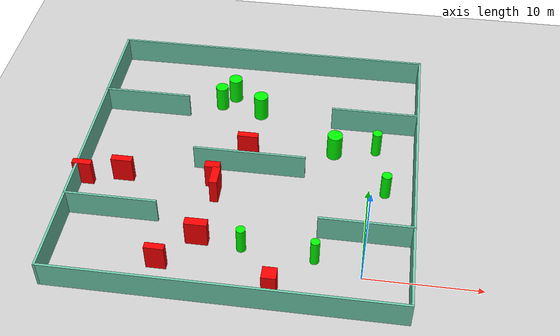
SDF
<sdf version="1.7">
 <world name="default">
  <light name="sun" type="directional">
   <pose>0 0 10 0 -0 0</pose>
   <diffuse>0.8 0.8 0.8 1</diffuse>
   <specular>0.2 0.2 0.2 1</specular>
   <attenuation>
    <range>1000</range>
    <constant>0.9</constant>
    <linear>0.01</linear>
    <quadratic>0.001</quadratic>
   </attenuation>
   <direction>-0.5 0.1 -0.9</direction>
   <spot><inner_angle>0</inner_angle><outer_angle>0</outer_angle><falloff>0</falloff></spot>
  </light>
  <model name="ground_plane">
   <static>1</static>
   <link name="link">
    <collision name="collision">
     <geometry><plane><normal>0 0 1</normal><size>100 100</size></plane></geometry>
     <surface>
      <contact><collide_bitmask>65535</collide_bitmask></contact>
      <friction><ode><mu>100</mu><mu2>50</mu2></ode></friction>
     </surface>
    </collision>
    <visual name="visual">
     <cast_shadows>0</cast_shadows>
     <geometry><plane><normal>0 0 1</normal><size>100 100</size></plane></geometry>
     <material>
      <script><uri>file://media/materials/scripts/gazebo.material</uri><name>Gazebo/Grey</name></script>
     </material>
    </visual>
   </link>
  </model>
  <gravity>0 0 -9.8</gravity>
  <magnetic_field>6e-06 2.3e-05 -4.2e-05</magnetic_field>
  <atmosphere type="adiabatic"/>
  <physics type="ode">
   <max_step_size>0.001</max_step_size>
   <real_time_factor>1</real_time_factor>
   <real_time_update_rate>1000</real_time_update_rate>
  </physics>
  <scene><ambient>0.4 0.4 0.4 1</ambient><background>0.7 0.7 0.7 1</background><shadows>1</shadows></scene>
  <spherical_coordinates>
   <surface_model>EARTH_WGS84</surface_model>
   <latitude_deg>0</latitude_deg>
   <longitude_deg>0</longitude_deg>
   <elevation>0</elevation>
   <heading_deg>0</heading_deg>
  </spherical_coordinates>
  <model name="my_base_walls">
   <link name="Wall_10">
    <collision name="Wall_10_Collision">
     <geometry><box><size>8.2 0.2 2.5</size></box></geometry>
     <pose>0 0 1.25 0 -0 0</pose>
    </collision>
    <visual name="Wall_10_Visual">
     <pose>0 0 1.25 0 -0 0</pose>
     <geometry><box><size>8.2 0.2 2.5</size></box></geometry>
     <material>
      <script><uri>file://media/materials/scripts/gazebo.material</uri><name>Gazebo/Grey</name></script>
      <ambient>0.435294 0.796078 0.67451 1</ambient>
     </material>
     <meta><layer>0</layer></meta>
    </visual>
    <pose>-11 -7 0 0 -0 0</pose>
   </link>
   <link name="Wall_12">
    <collision name="Wall_12_Collision">
     <geometry><box><size>8.2 0.2 2.5</size></box></geometry>
     <pose>0 0 1.25 0 -0 0</pose>
    </collision>
    <visual name="Wall_12_Visual">
     <pose>0 0 1.25 0 -0 0</pose>
     <geometry><box><size>8.2 0.2 2.5</size></box></geometry>
     <material>
      <script><uri>file://media/materials/scripts/gazebo.material</uri><name>Gazebo/Grey</name></script>
      <ambient>0.435294 0.796078 0.67451 1</ambient>
     </material>
     <meta><layer>0</layer></meta>
    </visual>
    <pose>-11 7 0 0 -0 0</pose>
   </link>
   <link name="Wall_14">
    <collision name="Wall_14_Collision">
     <geometry><box><size>8.2 0.2 2.5</size></box></geometry>
     <pose>0 0 1.25 0 -0 0</pose>
    </collision>
    <visual name="Wall_14_Visual">
     <pose>0 0 1.25 0 -0 0</pose>
     <geometry><box><size>8.2 0.2 2.5</size></box></geometry>
     <material>
      <script><uri>file://media/materials/scripts/gazebo.material</uri><name>Gazebo/Grey</name></script>
      <ambient>0.435294 0.796078 0.67451 1</ambient>
     </material>
     <meta><layer>0</layer></meta>
    </visual>
    <pose>11 7 0 0 -0 3.14159</pose>
   </link>
   <link name="Wall_16">
    <collision name="Wall_16_Collision">
     <geometry><box><size>10.2 0.2 2.5</size></box></geometry>
     <pose>0 0 1.25 0 -0 0</pose>
    </collision>
    <visual name="Wall_16_Visual">
     <pose>0 0 1.25 0 -0 0</pose>
     <geometry><box><size>10.2 0.2 2.5</size></box></geometry>
     <material>
      <script><uri>file://media/materials/scripts/gazebo.material</uri><name>Gazebo/Grey</name></script>
      <ambient>0.435294 0.796078 0.67451 1</ambient>
     </material>
     <meta><layer>0</layer></meta>
    </visual>
    <pose>0 0 0 0 -0 3.14159</pose>
   </link>
   <link name="Wall_2">
    <collision name="Wall_2_Collision">
     <geometry><box><size>30.2 0.2 2.5</size></box></geometry>
     <pose>0 0 1.25 0 -0 0</pose>
    </collision>
    <visual name="Wall_2_Visual">
     <pose>0 0 1.25 0 -0 0</pose>
     <geometry><box><size>30.2 0.2 2.5</size></box></geometry>
     <material>
      <script><uri>file://media/materials/scripts/gazebo.material</uri><name>Gazebo/Grey</name></script>
      <ambient>0.435294 0.796078 0.67451 1</ambient>
     </material>
     <meta><layer>0</layer></meta>
    </visual>
    <pose>0 -15 0 0 -0 3.14159</pose>
   </link>
   <link name="Wall_3">
    <collision name="Wall_3_Collision">
     <geometry><box><size>30.2 0.2 2.5</size></box></geometry>
     <pose>0 0 1.25 0 -0 0</pose>
    </collision>
    <visual name="Wall_3_Visual">
     <pose>0 0 1.25 0 -0 0</pose>
     <geometry><box><size>30.2 0.2 2.5</size></box></geometry>
     <material>
      <script><uri>file://media/materials/scripts/gazebo.material</uri><name>Gazebo/Grey</name></script>
      <ambient>0.435294 0.796078 0.67451 1</ambient>
     </material>
     <meta><layer>0</layer></meta>
    </visual>
    <pose>-15 0 0 0 -0 1.5708</pose>
   </link>
   <link name="Wall_4">
    <collision name="Wall_4_Collision">
     <geometry><box><size>30.2 0.2 2.5</size></box></geometry>
     <pose>0 0 1.25 0 -0 0</pose>
    </collision>
    <visual name="Wall_4_Visual">
     <pose>0 0 1.25 0 -0 0</pose>
     <geometry><box><size>30.2 0.2 2.5</size></box></geometry>
     <material>
      <script><uri>file://media/materials/scripts/gazebo.material</uri><name>Gazebo/Grey</name></script>
      <ambient>0.435294 0.796078 0.67451 1</ambient>
     </material>
     <meta><layer>0</layer></meta>
    </visual>
    <pose>0 15 0 0 -0 0</pose>
   </link>
   <link name="Wall_6">
    <collision name="Wall_6_Collision">
     <geometry><box><size>30.2 0.2 2.5</size></box></geometry>
     <pose>0 0 1.25 0 -0 0</pose>
    </collision>
    <visual name="Wall_6_Visual">
     <pose>0 0 1.25 0 -0 0</pose>
     <geometry><box><size>30.2 0.2 2.5</size></box></geometry>
     <material>
      <script><uri>file://media/materials/scripts/gazebo.material</uri><name>Gazebo/Grey</name></script>
      <ambient>0.435294 0.796078 0.67451 1</ambient>
     </material>
     <meta><layer>0</layer></meta>
    </visual>
    <pose>15 0 0 0 -0 1.5708</pose>
   </link>
   <link name="Wall_8">
    <collision name="Wall_8_Collision">
     <geometry><box><size>8.2 0.2 2.5</size></box></geometry>
     <pose>0 0 1.25 0 -0 0</pose>
    </collision>
    <visual name="Wall_8_Visual">
     <pose>0 0 1.25 0 -0 0</pose>
     <geometry><box><size>8.2 0.2 2.5</size></box></geometry>
     <material>
      <script><uri>file://media/materials/scripts/gazebo.material</uri><name>Gazebo/Grey</name></script>
      <ambient>0.435294 0.796078 0.67451 1</ambient>
     </material>
     <meta><layer>0</layer></meta>
    </visual>
    <pose>11 -7 0 0 -0 3.14159</pose>
   </link>
   <static>1</static>
   <pose>-11 11 0 0 -0 0</pose>
  </model>
  <model name="cylinder1">
   <static>1</static>
   <link name="link">
    <inertial>
     <mass>1</mass>
     <inertia><ixx>0.5</ixx><ixy>0</ixy><ixz>0</ixz><iyy>0.5</iyy><iyz>0</iyz><izz>1</izz></inertia>
    </inertial>
    <collision name="collision">
     <geometry><cylinder><radius>0.4355964681635989</radius><length>2.5</length></cylinder></geometry>
    </collision>
    <visual name="visual">
     <geometry><cylinder><radius>0.4355964681635989</radius><length>2.5</length></cylinder></geometry>
     <material>
      <ambient>0 1 0 1</ambient>
      <diffuse>0 1 0 1</diffuse>
      <specular>0.1 0.1 0.1 1</specular>
      <emissive>0 0 0 0</emissive>
     </material>
    </visual>
   </link>
   <pose>0.34907164942818625 15.06618980973732 1.25 0 0 0</pose>
  </model>
  <model name="cylinder2">
   <static>1</static>
   <link name="link">
    <inertial>
     <mass>1</mass>
     <inertia><ixx>0.5</ixx><ixy>0</ixy><ixz>0</ixz><iyy>0.5</iyy><iyz>0</iyz><izz>1</izz></inertia>
    </inertial>
    <collision name="collision">
     <geometry><cylinder><radius>0.45044292143553977</radius><length>2.5</length></cylinder></geometry>
    </collision>
    <visual name="visual">
     <geometry><cylinder><radius>0.45044292143553977</radius><length>2.5</length></cylinder></geometry>
     <material>
      <ambient>0 1 0 1</ambient>
      <diffuse>0 1 0 1</diffuse>
      <specular>0.1 0.1 0.1 1</specular>
      <emissive>0 0 0 0</emissive>
     </material>
    </visual>
   </link>
   <pose>1.446133455713312 9.712664364757298 1.25 0 0 0</pose>
  </model>
  <model name="cylinder3">
   <static>1</static>
   <link name="link">
    <inertial>
     <mass>1</mass>
     <inertia><ixx>0.5</ixx><ixy>0</ixy><ixz>0</ixz><iyy>0.5</iyy><iyz>0</iyz><izz>1</izz></inertia>
    </inertial>
    <collision name="collision">
     <geometry><cylinder><radius>0.6401963947866887</radius><length>2.5</length></cylinder></geometry>
    </collision>
    <visual name="visual">
     <geometry><cylinder><radius>0.6401963947866887</radius><length>2.5</length></cylinder></geometry>
     <material>
      <ambient>0 1 0 1</ambient>
      <diffuse>0 1 0 1</diffuse>
      <specular>0.1 0.1 0.1 1</specular>
      <emissive>0 0 0 0</emissive>
     </material>
    </visual>
   </link>
   <pose>-13.902851005731929 21.12586180313914 1.25 0 0 0</pose>
  </model>
  <model name="cylinder4">
   <static>1</static>
   <link name="link">
    <inertial>
     <mass>1</mass>
     <inertia><ixx>0.5</ixx><ixy>0</ixy><ixz>0</ixz><iyy>0.5</iyy><iyz>0</iyz><izz>1</izz></inertia>
    </inertial>
    <collision name="collision">
     <geometry><cylinder><radius>0.3906018128705291</radius><length>2.5</length></cylinder></geometry>
    </collision>
    <visual name="visual">
     <geometry><cylinder><radius>0.3906018128705291</radius><length>2.5</length></cylinder></geometry>
     <material>
      <ambient>0 1 0 1</ambient>
      <diffuse>0 1 0 1</diffuse>
      <specular>0.1 0.1 0.1 1</specular>
      <emissive>0 0 0 0</emissive>
     </material>
    </visual>
   </link>
   <pose>-4.013559197347497 1.3231679964731793 1.25 0 0 0</pose>
  </model>
  <model name="cylinder5">
   <static>1</static>
   <link name="link">
    <inertial>
     <mass>1</mass>
     <inertia><ixx>0.5</ixx><ixy>0</ixy><ixz>0</ixz><iyy>0.5</iyy><iyz>0</iyz><izz>1</izz></inertia>
    </inertial>
    <collision name="collision">
     <geometry><cylinder><radius>0.5901488207063283</radius><length>2.5</length></cylinder></geometry>
    </collision>
    <visual name="visual">
     <geometry><cylinder><radius>0.5901488207063283</radius><length>2.5</length></cylinder></geometry>
     <material>
      <ambient>0 1 0 1</ambient>
      <diffuse>0 1 0 1</diffuse>
      <specular>0.1 0.1 0.1 1</specular>
      <emissive>0 0 0 0</emissive>
     </material>
    </visual>
   </link>
   <pose>-15.006656350591207 19.717887208733273 1.25 0 0 0</pose>
  </model>
  <model name="cylinder6">
   <static>1</static>
   <link name="link">
    <inertial>
     <mass>1</mass>
     <inertia><ixx>0.5</ixx><ixy>0</ixy><ixz>0</ixz><iyy>0.5</iyy><iyz>0</iyz><izz>1</izz></inertia>
    </inertial>
    <collision name="collision">
     <geometry><cylinder><radius>0.669132657635796</radius><length>2.5</length></cylinder></geometry>
    </collision>
    <visual name="visual">
     <geometry><cylinder><radius>0.669132657635796</radius><length>2.5</length></cylinder></geometry>
     <material>
      <ambient>0 1 0 1</ambient>
      <diffuse>0 1 0 1</diffuse>
      <specular>0.1 0.1 0.1 1</specular>
      <emissive>0 0 0 0</emissive>
     </material>
    </visual>
   </link>
   <pose>-11.053900130231137 18.87653815146119 1.25 0 0 0</pose>
  </model>
  <model name="cylinder7">
   <static>1</static>
   <link name="link">
    <inertial>
     <mass>1</mass>
     <inertia><ixx>0.5</ixx><ixy>0</ixy><ixz>0</ixz><iyy>0.5</iyy><iyz>0</iyz><izz>1</izz></inertia>
    </inertial>
    <collision name="collision">
     <geometry><cylinder><radius>0.40612652178109987</radius><length>2.5</length></cylinder></geometry>
    </collision>
    <visual name="visual">
     <geometry><cylinder><radius>0.40612652178109987</radius><length>2.5</length></cylinder></geometry>
     <material>
      <ambient>0 1 0 1</ambient>
      <diffuse>0 1 0 1</diffuse>
      <specular>0.1 0.1 0.1 1</specular>
      <emissive>0 0 0 0</emissive>
     </material>
    </visual>
   </link>
   <pose>-10.276802288483097 1.8178473369570778 1.25 0 0 0</pose>
  </model>
  <model name="cylinder8">
   <static>1</static>
   <link name="link">
    <inertial>
     <mass>1</mass>
     <inertia><ixx>0.5</ixx><ixy>0</ixy><ixz>0</ixz><iyy>0.5</iyy><iyz>0</iyz><izz>1</izz></inertia>
    </inertial>
    <collision name="collision">
     <geometry><cylinder><radius>0.6974073076221309</radius><length>2.5</length></cylinder></geometry>
    </collision>
    <visual name="visual">
     <geometry><cylinder><radius>0.6974073076221309</radius><length>2.5</length></cylinder></geometry>
     <material>
      <ambient>0 1 0 1</ambient>
      <diffuse>0 1 0 1</diffuse>
      <specular>0.1 0.1 0.1 1</specular>
      <emissive>0 0 0 0</emissive>
     </material>
    </visual>
   </link>
   <pose>-3.498785031482626 14.274310814258012 1.25 0 0 0</pose>
  </model>
  <model name="box1">
   <static>1</static>
   <link name="link">
    <inertial>
     <mass>1</mass>
     <inertia><ixx>0.083</ixx><ixy>0</ixy><ixz>0</ixz><iyy>0.083</iyy><iyz>0</iyz><izz>0.083</izz></inertia>
    </inertial>
    <collision name="collision">
     <geometry><box><size>1.2254414423687159 1.1745667843068701 2.5</size></box></geometry>
    </collision>
    <visual name="visual">
     <geometry><box><size>1.2254414423687159 1.1745667843068701 2.5</size></box></geometry>
     <material>
      <ambient>1 0 0 1</ambient>
      <diffuse>1 0 0 1</diffuse>
      <specular>0.1 0.1 0.1 1</specular>
      <emissive>0 0 0 0</emissive>
     </material>
    </visual>
    <sensor name="my_contact" type="contact">
     <contact><collision>box_collision</collision><topic>__default_topic__</topic></contact>
    </sensor>
   </link>
   <pose>-7.3096078539983775 -2.344660984987104 1.25 0 0 0</pose>
  </model>
  <model name="box2">
   <static>1</static>
   <link name="link">
    <inertial>
     <mass>1</mass>
     <inertia><ixx>0.083</ixx><ixy>0</ixy><ixz>0</ixz><iyy>0.083</iyy><iyz>0</iyz><izz>0.083</izz></inertia>
    </inertial>
    <collision name="collision">
     <geometry><box><size>1.731758512671525 0.5915963342009076 2.5</size></box></geometry>
    </collision>
    <visual name="visual">
     <geometry><box><size>1.731758512671525 0.5915963342009076 2.5</size></box></geometry>
     <material>
      <ambient>1 0 0 1</ambient>
      <diffuse>1 0 0 1</diffuse>
      <specular>0.1 0.1 0.1 1</specular>
      <emissive>0 0 0 0</emissive>
     </material>
    </visual>
    <sensor name="my_contact" type="contact">
     <contact><collision>box_collision</collision><topic>__default_topic__</topic></contact>
    </sensor>
   </link>
   <pose>-25.587490203433017 7.827727852257825 1.25 0 0 0</pose>
  </model>
  <model name="box3">
   <static>1</static>
   <link name="link">
    <inertial>
     <mass>1</mass>
     <inertia><ixx>0.083</ixx><ixy>0</ixy><ixz>0</ixz><iyy>0.083</iyy><iyz>0</iyz><izz>0.083</izz></inertia>
    </inertial>
    <collision name="collision">
     <geometry><box><size>1.9664778196426227 0.7612025946352599 2.5</size></box></geometry>
    </collision>
    <visual name="visual">
     <geometry><box><size>1.9664778196426227 0.7612025946352599 2.5</size></box></geometry>
     <material>
      <ambient>1 0 0 1</ambient>
      <diffuse>1 0 0 1</diffuse>
      <specular>0.1 0.1 0.1 1</specular>
      <emissive>0 0 0 0</emissive>
     </material>
    </visual>
    <sensor name="my_contact" type="contact">
     <contact><collision>box_collision</collision><topic>__default_topic__</topic></contact>
    </sensor>
   </link>
   <pose>-14.118529030212693 2.1553424340119127 1.25 0 0 0</pose>
  </model>
  <model name="box4">
   <static>1</static>
   <link name="link">
    <inertial>
     <mass>1</mass>
     <inertia><ixx>0.083</ixx><ixy>0</ixy><ixz>0</ixz><iyy>0.083</iyy><iyz>0</iyz><izz>0.083</izz></inertia>
    </inertial>
    <collision name="collision">
     <geometry><box><size>1.9052455035899896 0.644191801510281 2.5</size></box></geometry>
    </collision>
    <visual name="visual">
     <geometry><box><size>1.9052455035899896 0.644191801510281 2.5</size></box></geometry>
     <material>
      <ambient>1 0 0 1</ambient>
      <diffuse>1 0 0 1</diffuse>
      <specular>0.1 0.1 0.1 1</specular>
      <emissive>0 0 0 0</emissive>
     </material>
    </visual>
    <sensor name="my_contact" type="contact">
     <contact><collision>box_collision</collision><topic>__default_topic__</topic></contact>
    </sensor>
   </link>
   <pose>-22.161942950560594 8.723976836237279 1.25 0 0 0</pose>
  </model>
  <model name="box5">
   <static>1</static>
   <link name="link">
    <inertial>
     <mass>1</mass>
     <inertia><ixx>0.083</ixx><ixy>0</ixy><ixz>0</ixz><iyy>0.083</iyy><iyz>0</iyz><izz>0.083</izz></inertia>
    </inertial>
    <collision name="collision">
     <geometry><box><size>1.3593425266194705 0.7453903049182278 2.5</size></box></geometry>
    </collision>
    <visual name="visual">
     <geometry><box><size>1.3593425266194705 0.7453903049182278 2.5</size></box></geometry>
     <material>
      <ambient>1 0 0 1</ambient>
      <diffuse>1 0 0 1</diffuse>
      <specular>0.1 0.1 0.1 1</specular>
      <emissive>0 0 0 0</emissive>
     </material>
    </visual>
    <sensor name="my_contact" type="contact">
     <contact><collision>box_collision</collision><topic>__default_topic__</topic></contact>
    </sensor>
   </link>
   <pose>-13.986022443612733 9.046933247800437 1.25 0 0 0</pose>
  </model>
  <model name="box6">
   <static>1</static>
   <link name="link">
    <inertial>
     <mass>1</mass>
     <inertia><ixx>0.083</ixx><ixy>0</ixy><ixz>0</ixz><iyy>0.083</iyy><iyz>0</iyz><izz>0.083</izz></inertia>
    </inertial>
    <collision name="collision">
     <geometry><box><size>1.9016312545293743 0.5973077500614928 2.5</size></box></geometry>
    </collision>
    <visual name="visual">
     <geometry><box><size>1.9016312545293743 0.5973077500614928 2.5</size></box></geometry>
     <material>
      <ambient>1 0 0 1</ambient>
      <diffuse>1 0 0 1</diffuse>
      <specular>0.1 0.1 0.1 1</specular>
      <emissive>0 0 0 0</emissive>
     </material>
    </visual>
    <sensor name="my_contact" type="contact">
     <contact><collision>box_collision</collision><topic>__default_topic__</topic></contact>
    </sensor>
   </link>
   <pose>-11.459445185086414 13.312607416783571 1.25 0 0 0</pose>
  </model>
  <model name="box7">
   <static>1</static>
   <link name="link">
    <inertial>
     <mass>1</mass>
     <inertia><ixx>0.083</ixx><ixy>0</ixy><ixz>0</ixz><iyy>0.083</iyy><iyz>0</iyz><izz>0.083</izz></inertia>
    </inertial>
    <collision name="collision">
     <geometry><box><size>1.6992622110224713 0.600125601182557 2.5</size></box></geometry>
    </collision>
    <visual name="visual">
     <geometry><box><size>1.6992622110224713 0.600125601182557 2.5</size></box></geometry>
     <material>
      <ambient>1 0 0 1</ambient>
      <diffuse>1 0 0 1</diffuse>
      <specular>0.1 0.1 0.1 1</specular>
      <emissive>0 0 0 0</emissive>
     </material>
    </visual>
    <sensor name="my_contact" type="contact">
     <contact><collision>box_collision</collision><topic>__default_topic__</topic></contact>
    </sensor>
   </link>
   <pose>-16.944650631160727 -0.8832375792832177 1.25 0 0 0</pose>
  </model>
  <model name="box8">
   <static>1</static>
   <link name="link">
    <inertial>
     <mass>1</mass>
     <inertia><ixx>0.083</ixx><ixy>0</ixy><ixz>0</ixz><iyy>0.083</iyy><iyz>0</iyz><izz>0.083</izz></inertia>
    </inertial>
    <collision name="collision">
     <geometry><box><size>0.7212628796560743 1.961515096699551 2.5</size></box></geometry>
    </collision>
    <visual name="visual">
     <geometry><box><size>0.7212628796560743 1.961515096699551 2.5</size></box></geometry>
     <material>
      <ambient>1 0 0 1</ambient>
      <diffuse>1 0 0 1</diffuse>
      <specular>0.1 0.1 0.1 1</specular>
      <emissive>0 0 0 0</emissive>
     </material>
    </visual>
    <sensor name="my_contact" type="contact">
     <contact><collision>box_collision</collision><topic>__default_topic__</topic></contact>
    </sensor>
   </link>
   <pose>-13.550976014898135 7.796407436461866 1.25 0 0 0</pose>
  </model>
 </world>
</sdf>
